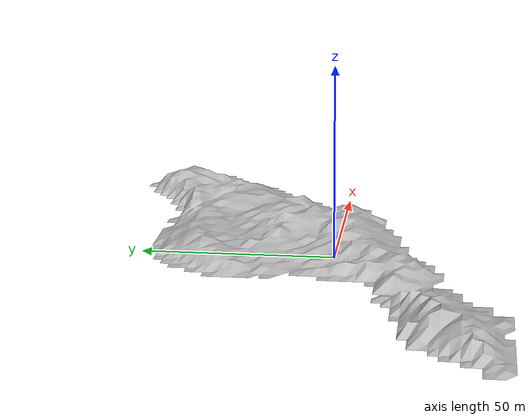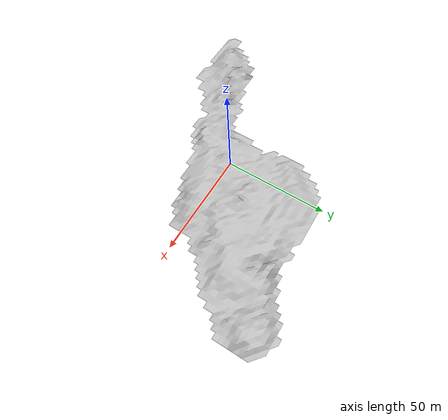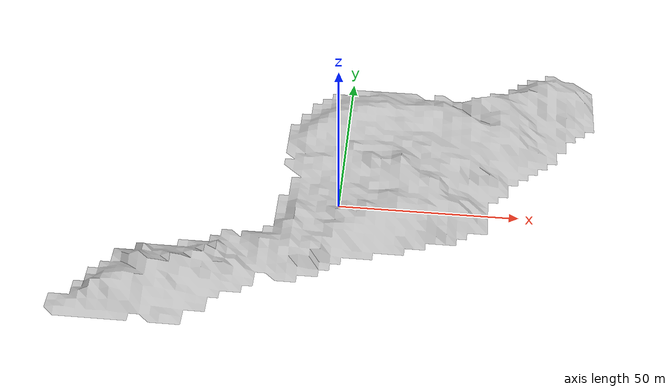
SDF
<?xml version='1.0' encoding='UTF-8'?>
<sdf version="1.9">
  <!-- Unity presentation geometry scale=0.18 -->
  <model name="catalina_island">
    <static>true</static>
    <link name="terrain_link">
      <!-- Catalina 岛屿卫星地形 -->
      <visual name="terrain_visual">
        <cast_shadows>true</cast_shadows>
        <geometry>
          <mesh>
            <uri>meshes/scene.gltf</uri>
            <!--
              原模型约 41.6km × 35.5km。
              Unity 与 Gazebo 共用 0.024 原始 mesh 缩放。
            -->
            <scale>0.00432 0.00432 0.00432</scale>
          </mesh>
        </geometry>
      </visual>
      <collision name="terrain_collision">
        <geometry>
          <mesh>
            <uri>meshes/terrain_collision.obj</uri>
            <scale>0.00432 0.00432 0.00432</scale>
          </mesh>
        </geometry>
      </collision>
    </link>
  </model>
</sdf>
